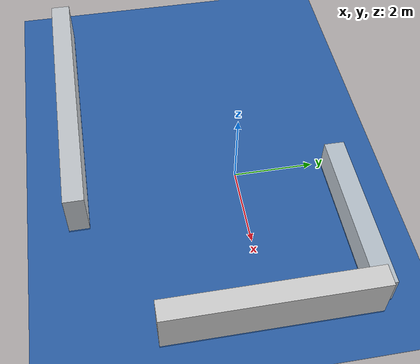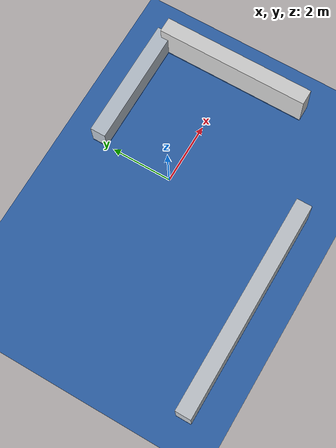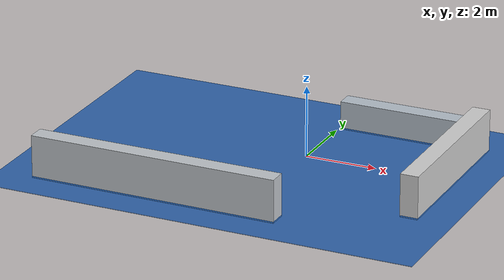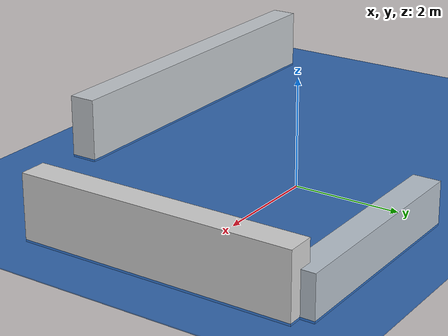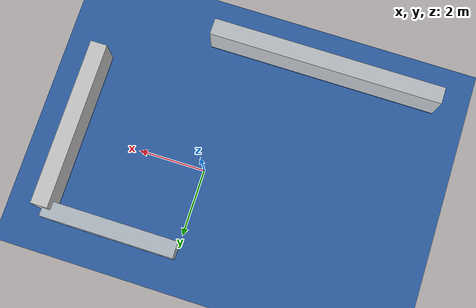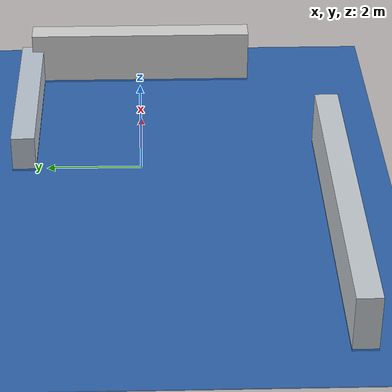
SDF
<?xml version="1.0"?>
<sdf version="1.10">
  <world name="exploration_arena">
    <plugin filename="gz-sim-physics-system" name="gz::sim::systems::Physics"/>
    <plugin filename="gz-sim-user-commands-system" name="gz::sim::systems::UserCommands"/>
    <plugin filename="gz-sim-scene-broadcaster-system" name="gz::sim::systems::SceneBroadcaster"/>
    <plugin filename="gz-sim-sensors-system" name="gz::sim::systems::Sensors">
      <render_engine>ogre2</render_engine>
    </plugin>
    <plugin filename="gz-sim-imu-system" name="gz::sim::systems::Imu"/>
    <plugin filename="gz-sim-navsat-system" name="gz::sim::systems::NavSat"/>
    <plugin filename="gz-sim-magnetometer-system" name="gz::sim::systems::Magnetometer"/>

    <physics type="ignored">
      <max_step_size>0.004</max_step_size>
      <real_time_factor>1.0</real_time_factor>
      <real_time_update_rate>250</real_time_update_rate>
    </physics>
    <gravity>0 0 -9.80665</gravity>
    <light type="directional" name="sun">
      <pose>50 0 150 0 0 0</pose>
      <diffuse>1 1 1 1</diffuse>
      <specular>0.1 0.1 0.1 1</specular>
      <direction>0.3 0.3 -1</direction>
      <cast_shadows>false</cast_shadows>
    </light>
    <include><uri>model://water_surface</uri></include>
    <model name="exploration_wall">
      <pose>4 0 0.55 0 0 0</pose>
      <static>true</static>
      <link name="link">
        <collision name="collision">
          <geometry><box><size>0.5 5.0 1.2</size></box></geometry>
        </collision>
        <visual name="visual">
          <geometry><box><size>0.5 5.0 1.2</size></box></geometry>
          <material>
            <ambient>0.72 0.72 0.72 1</ambient>
            <diffuse>0.82 0.82 0.82 1</diffuse>
          </material>
        </visual>
      </link>
    </model>
    <model name="exploration_return_wall">
      <pose>2 2.5 0.35 0 0 0</pose>
      <static>true</static>
      <link name="link">
        <collision name="collision">
          <geometry><box><size>4.0 0.5 0.8</size></box></geometry>
        </collision>
        <visual name="visual">
          <geometry><box><size>4.0 0.5 0.8</size></box></geometry>
          <material>
            <ambient>0.62 0.66 0.70 1</ambient>
            <diffuse>0.72 0.76 0.80 1</diffuse>
          </material>
        </visual>
      </link>
    </model>
    <model name="exploration_south_breakwater">
      <pose>-2.5 -4.0 0.55 0 0 0</pose>
      <static>true</static>
      <link name="link">
        <collision name="collision">
          <geometry><box><size>7.0 0.5 1.2</size></box></geometry>
        </collision>
        <visual name="visual">
          <geometry><box><size>7.0 0.5 1.2</size></box></geometry>
          <material>
            <ambient>0.66 0.68 0.70 1</ambient>
            <diffuse>0.76 0.78 0.80 1</diffuse>
          </material>
        </visual>
      </link>
    </model>
  </world>
</sdf>

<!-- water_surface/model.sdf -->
<sdf version="1.6">
  <model name="water_surface">
    <static>true</static>

    <link name="water_surface_link">
      <visual name="water_surface_visual">
        <pose>0 0 -0.02 0 0 0</pose>
        <geometry>
          <box>
            <size>2000 2000 0.02</size>
          </box>
        </geometry>
        <material>
          <ambient>0.0 0.3 0.7 1.0</ambient>
          <diffuse>0.0 0.3 0.7 0.7</diffuse>
          <specular>0.1 0.1 0.1 1.0</specular>
        </material>
        <transparency>0.25</transparency>
      </visual>
    </link>
  </model>
</sdf>
